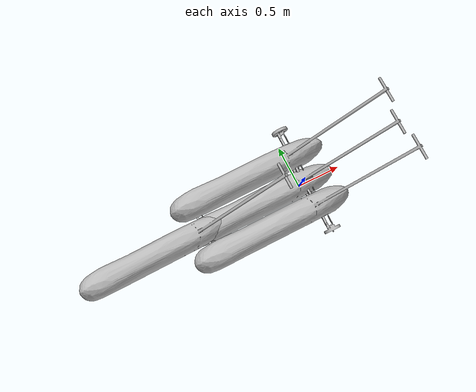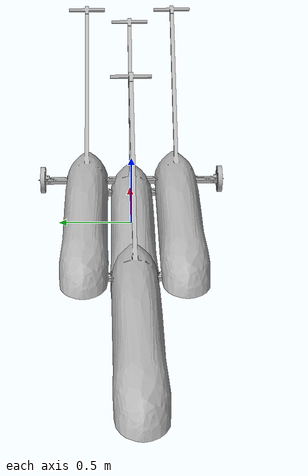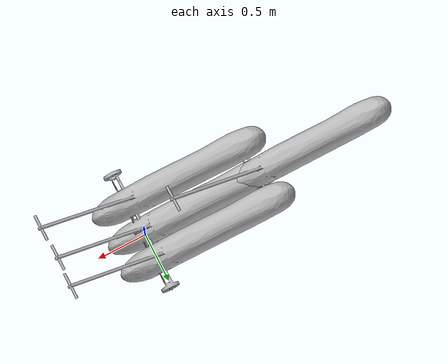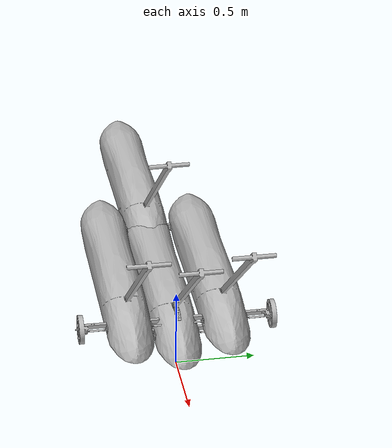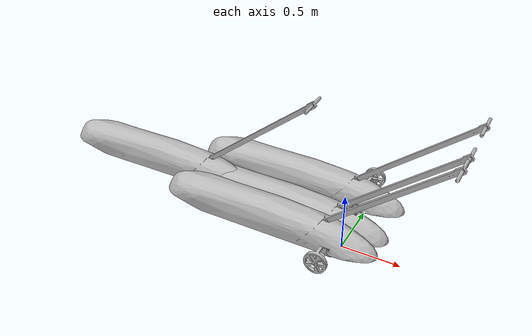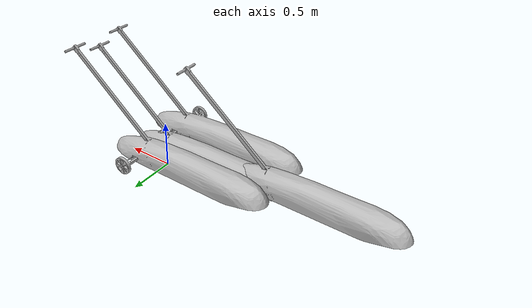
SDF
<sdf version="1.7">
 <world name="default">
  <include><uri>model://sun</uri></include>
  <include><uri>model://buggy</uri><pose>0 0 0.15 0 -1.5707 0</pose></include>
 </world>
</sdf>

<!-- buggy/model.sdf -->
<sdf version="1.7">
  <model name="buggy">
    <pose>0 0 0.125 0 -1.57079633 0</pose>
    <static>false</static>
    <link name="chassis">
      <inertial>
        <mass>34.0</mass>
        <inertia>          <!-- inertias are tricky to compute -->
          <!-- http://gazebosim.org/tutorials?tut=inertia&cat=build_robot -->
          <ixx>18.58</ixx>          <!-- for a box: ixx = 0.083 * mass * (y*y + z*z) -->
          <ixy>0.0</ixy>          <!-- for a box: ixy = 0 -->
          <ixz>0.0</ixz>          <!-- for a box: ixz = 0 -->
          <iyy>3.093</iyy>          <!-- for a box: iyy = 0.083 * mass * (x*x + z*z) -->
          <iyz>0.0</iyz>          <!-- for a box: iyz = 0 -->
          <izz>15.543</izz>          <!-- for a box: izz = 0.083 * mass * (x*x + y*y) -->
        </inertia>
      </inertial>
      <collision name="collision">
        <pose>
          0.16 0.0 0.54 0.0 0.0 0.0
        </pose>
        <geometry>
          <box>
            <size>0.24 0.29 1.84</size>
          </box>
        </geometry>
      </collision>
      <visual name="frame_visual">
        <geometry>
          <mesh>
            <uri>model://buggy/buggy.dae</uri>
            <submesh>
              <name>frame</name>
            </submesh>
          </mesh>
        </geometry>
      </visual>
      <visual name="shell_visual">
        <geometry>
          <mesh>
            <uri>model://buggy/buggy.dae</uri>
            <submesh>
              <name>shell</name>
            </submesh>
          </mesh>
        </geometry>
      </visual>
    </link>
    <link name="left_wheel">
      <pose>0.0857 -0.301 -0.0159 0.0 0.0 0.0</pose>
      <collision name="collision">
        <pose>0.0 0.0 0.0 -1.57079633 0.0 0.0</pose>
        <geometry>
          <cylinder>
            <radius>0.09</radius>
            <length>0.03</length>
          </cylinder>
        </geometry>
      </collision>
      <visual name="visual">
        <geometry>
          <mesh>
            <uri>model://buggy/buggy.dae</uri>
            <submesh>
              <name>leftwheel</name>
              <center>true</center>
            </submesh>
          </mesh>
        </geometry>
      </visual>
    </link>
    <link name="right_wheel">
      <pose>0.0857 0.301 -0.0159 0.0 0.0 0.0</pose>
      <collision name="collision">
        <pose>0.0 0.0 0.0 -1.57079633 0.0 0.0</pose>
        <geometry>
          <cylinder>
            <radius>0.09</radius>
            <length>0.03</length>
          </cylinder>
        </geometry>
      </collision>
      <visual name="visual">
        <geometry>
          <mesh>
            <uri>model://buggy/buggy.dae</uri>
            <submesh>
              <name>rightwheel</name>
              <center>true</center>
            </submesh>
          </mesh>
        </geometry>
      </visual>
    </link>
    <link name="front_wheel">
      <pose>0.0789 0 1.18 0.01 0.0 0.0</pose>
      <collision name="collision">
        <pose>0.0 0.0 0.0 -1.57079633 0.0 0.0</pose>
        <geometry>
          <cylinder>
            <radius>0.09</radius>
            <length>0.03</length>
          </cylinder>
        </geometry>
      </collision>
      <visual name="visual">
        <geometry>
          <mesh>
            <uri>model://buggy/buggy.dae</uri>
            <submesh>
              <name>frontwheel</name>
              <center>true</center>
            </submesh>
          </mesh>
        </geometry>
      </visual>
    </link>
    <joint type="revolute" name="left_wheel_hinge">
      <pose>0 0 0 0 0 0</pose>
      <child>left_wheel</child>
      <parent>chassis</parent>
      <axis>
        <xyz>0 1 0</xyz>
      </axis>
    </joint>
    <joint type="revolute" name="right_wheel_hinge">
      <pose>0 0 0 0 0 0</pose>
      <child>right_wheel</child>
      <parent>chassis</parent>
      <axis>
        <xyz>0 1 0</xyz>
      </axis>
    </joint>
    <joint type="revolute" name="front_wheel_hinge">
      <pose>0 0 0 0 0 0</pose>
      <child>front_wheel</child>
      <parent>chassis</parent>
      <axis>
        <xyz>0 1 0</xyz>
      </axis>
    </joint>
  </model>
</sdf>
